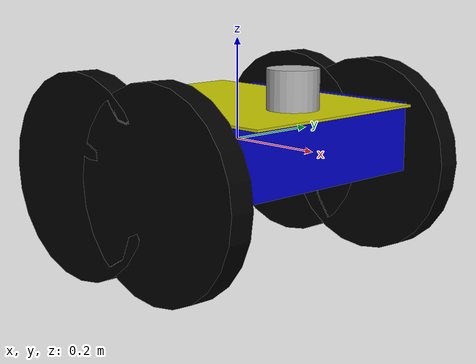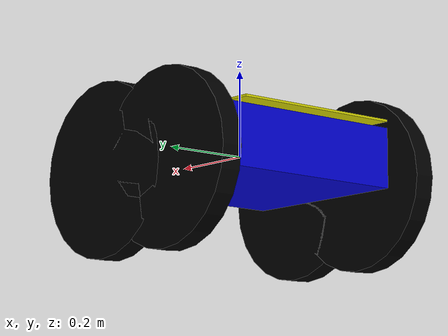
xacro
<?xml version="1.0"?>
<robot name="fourwheeler" xmlns:xacro="http://www.ros.org/wiki/xacro">

    <xacro:property name="base_width" value="0.520"/>
    <xacro:property name="base_length" value="0.430"/>
    <xacro:property name="base_height" value="0.140"/>
    <xacro:property name="wheel_width" value="0.05"/>
    <xacro:property name="wheel_radius" value="0.2"/>
    <xacro:property name="lowrider" value="0"/>

    <xacro:property name="half_track" value="${base_width/2 + wheel_width/2}"/>
    <xacro:property name="wheel_offset" value="${base_length/4}"/>

    <link name="base_link">
        <visual>
            <geometry>
                <box size="${base_length} ${base_width} ${base_height}"/>
            </geometry>
            <material name="blue">
                <color rgba="0 0 0.8 1"/>
            </material>
        </visual>
    </link>

    <xacro:macro name="wheel" params="wheel_name reflect_y reflect_x">
    <link name="${wheel_name}">
        <visual>
            <geometry>
                <cylinder length="${wheel_width}" radius="${wheel_radius}"/>
            </geometry>
            <material name="black">
                <color rgba="0 0 0 1"/>
            </material>
        </visual>
    </link>
    <joint name="${wheel_name}_to_base" type="continuous">
        <parent link="base_link"/>
        <child link="${wheel_name}"/>
        <origin xyz="${reflect_x*wheel_offset} ${reflect_y * half_track} ${-0.05 + lowrider}" rpy="1.57 0 0"/>
        <axis xyz="0 0 1"/>
    </joint>
    </xacro:macro>

    <xacro:wheel wheel_name="front_left_wheel" reflect_y="1" reflect_x="1"/>
    <xacro:wheel wheel_name="front_right_wheel" reflect_y="-1" reflect_x="1"/>
    <xacro:wheel wheel_name="back_left_wheel" reflect_y="1" reflect_x="-1"/>
    <xacro:wheel wheel_name="back_right_wheel" reflect_y="-1" reflect_x="-1"/>

    <link name="hood">
        <visual>
            <geometry>
                <box size="0.530 0.420 0.005"/>
            </geometry>
            <material name="yellow">
                <color rgba="0.8 0.8 0 1"/>
            </material>
        </visual>
    </link>
    <joint name="hood_to_base" type="fixed">
        <parent link="base_link"/>
        <child link="hood"/>
        <origin xyz="0 0 0.0725"/>
    </joint>

    <link name="lidar">
        <visual>
            <geometry>
                <cylinder length="0.08" radius="0.05"/>
            </geometry>
            <material name="Gray">
                <color rgba="0.7 0.7 0.7 1"/>
            </material>
        </visual>
    </link>
    <joint name="lidar_to_hood" type="continuous">
        <parent link="hood"/>
        <child link="lidar"/>
        <origin xyz="0.15 0 0.04" rpy="0 0 0"/>
        <axis xyz="0 0 1"/>
    </joint>
</robot>
